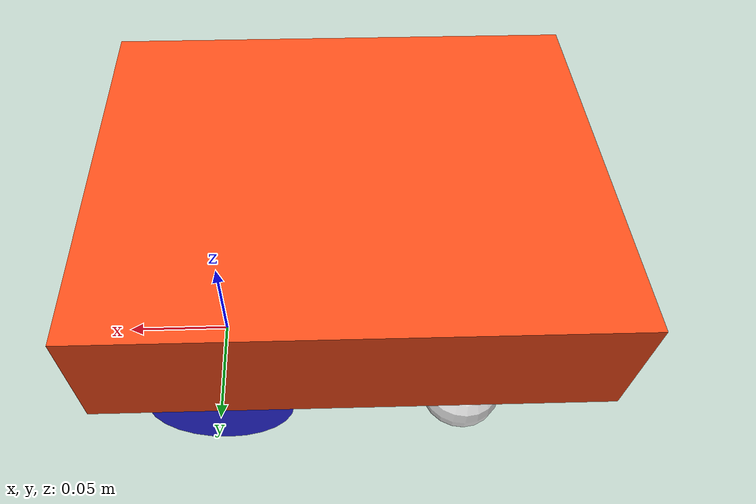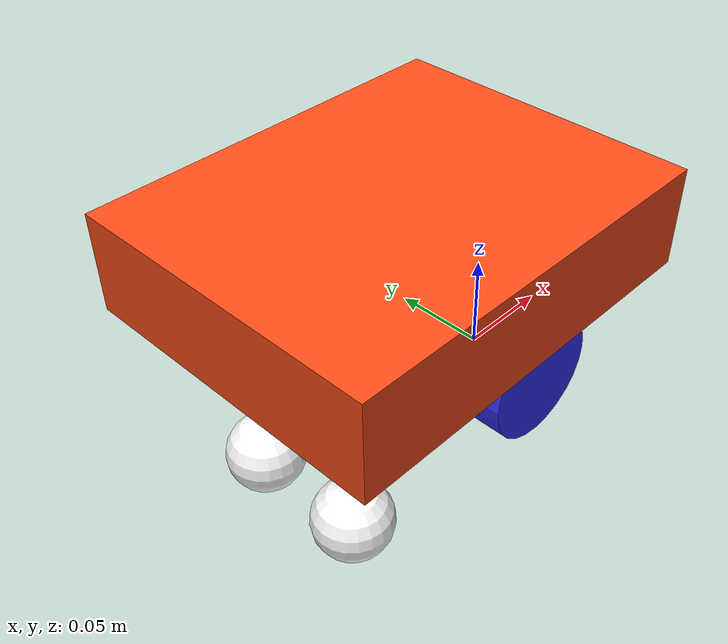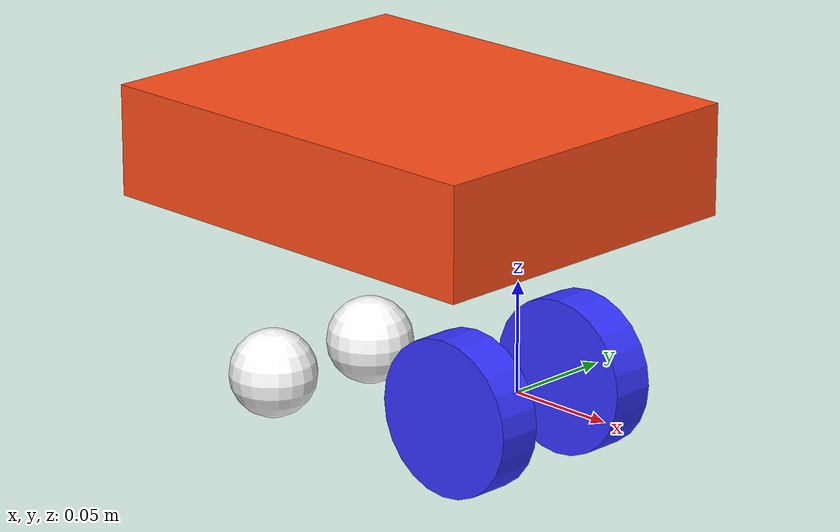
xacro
<?xml version="1.0"?>
<robot xmlns:xacro="http://www.ros.org/wiki/xacro" >

    <xacro:property name="chassis_length" value="0.200"/>
    <xacro:property name="chassis_width" value="0.160"/>
    <xacro:property name="chassis_height" value="0.050"/>
    <xacro:property name="chassis_mass" value="1.0"/>
    <xacro:property name="chassis_offset_x" value="-0.06"/>
    <xacro:property name="chassis_offset_y" value="0"/>
    <xacro:property name="chassis_offset_z" value="0.095"/>
    <xacro:property name="wheel_radius" value="0.035"/>
    <xacro:property name="wheel_thickness" value="0.020"/>
    <xacro:property name="wheel_mass" value="0.05"/>
    <xacro:property name="wheel_offset_x" value="0.226"/>
    <xacro:property name="wheel_offset_y" value="0.035"/>
    <xacro:property name="wheel_offset_z" value="0.01"/>
    <xacro:property name="caster_wheel_radius" value="0.02"/>
    <xacro:property name="caster_wheel_mass" value="0.5"/>
    <xacro:property name="caster_wheel_offset_x" value="0.12"/>
    <xacro:property name="caster_wheel_offset_y" value="0.03"/>
    <xacro:property name="caster_wheel_offset_z" value="0.015"/>

    <material name="white">
        <color rgba="1 1 1 1" />
    </material>

    <material name="orange">
        <color rgba="1 0.3 0.1 1"/>
    </material>

    <material name="blue">
        <color rgba="0.2 0.2 1 1"/>
    </material>

    <material name="black">
        <color rgba="0 0 0 1"/>
    </material>

    <material name="red">
        <color rgba="1 0 0 1"/>
    </material>

    <!-- Базовая ссылка -->
    <link name="base_link">
    </link>

    <!-- След базовой ссылки -->
    <joint name="base_footprint_joint" type="fixed">
        <parent link="base_link"/>
        <child link="base_footprint"/>
        <origin xyz="0 0 0" rpy="0 0 0"/>
    </joint>

    <link name="base_footprint">
    </link>

    <!-- Шасси -->
    <joint name="chassis_joint" type="fixed">
        <parent link="base_link"/>
        <child link="chassis"/>
        <origin xyz="${chassis_offset_x} ${chassis_offset_y} ${chassis_offset_z}"/>
    </joint>

    <link name="chassis">
        <visual>
            <origin xyz="0 0 0"/>
            <geometry>
                <box size="${chassis_length} ${chassis_width} ${chassis_height}"/>
            </geometry>
            <material name="orange"/>
        </visual>
        <collision>
            <origin xyz="${chassis_length/2} 0 ${chassis_height/2}"/>
            <geometry>
                <box size="${chassis_length} ${chassis_width} ${chassis_height}"/>
            </geometry>
        </collision>
    </link>

    <!-- Левое колесо -->
    <joint name="left_wheel_joint" type="continuous">
        <parent link="base_link"/>
        <child link="left_wheel"/>
        <origin xyz="0 ${wheel_offset_y} 0" rpy="-${pi/2} 0 0" />
        <axis xyz="0 0 1"/>
    </joint>

    <link name="left_wheel">
        <visual>
            <geometry>
                <cylinder radius="${wheel_radius}" length="${wheel_thickness}"/>
            </geometry>
            <material name="blue"/>
        </visual>
        <collision>
            <geometry>
                <sphere radius="${wheel_radius}"/>
            </geometry>
        </collision>
    </link>

    <!-- Правое колесо -->
    <joint name="right_wheel_joint" type="continuous">
        <parent link="base_link"/>
        <child link="right_wheel"/>
        <origin xyz="0 ${-wheel_offset_y} 0" rpy="${pi/2} 0 0" />
        <axis xyz="0 0 -1"/>
    </joint>

    <link name="right_wheel">
        <visual>
            <geometry>
                <cylinder radius="${wheel_radius}" length="${wheel_thickness}"/>
            </geometry>
            <material name="blue"/>
        </visual>
        <collision>
            <geometry>
                <sphere radius="${wheel_radius}"/>
            </geometry>
        </collision>
    </link>

    <!-- Левое поддерживающее колесо -->
    <joint name="left_caster_wheel_joint" type="fixed">
        <parent link="base_link"/>
        <child link="left_caster_wheel"/>
        <origin xyz="${-caster_wheel_offset_x} ${caster_wheel_offset_y} ${-caster_wheel_offset_z}"/>
    </joint>

    <link name="left_caster_wheel">
        <visual>
            <geometry>
                <sphere radius="${caster_wheel_radius}"/>
            </geometry>
            <material name="white"/>
        </visual>
        <collision>
            <geometry>
                <sphere radius="${caster_wheel_radius}"/>
            </geometry>
        </collision>
    </link>

    <!-- Правое поддерживающее колесо -->
    <joint name="right_caster_wheel_joint" type="fixed">
        <parent link="base_link"/>
        <child link="right_caster_wheel"/>
        <origin xyz="${-caster_wheel_offset_x} ${-caster_wheel_offset_y} ${-caster_wheel_offset_z}"/>
    </joint>

    <link name="right_caster_wheel">
        <visual>
            <geometry>
                <sphere radius="${caster_wheel_radius}"/>
            </geometry>
            <material name="white"/>
        </visual>
        <collision>
            <geometry>
                <sphere radius="${caster_wheel_radius}"/>
            </geometry>
        </collision>
    </link>
</robot>
